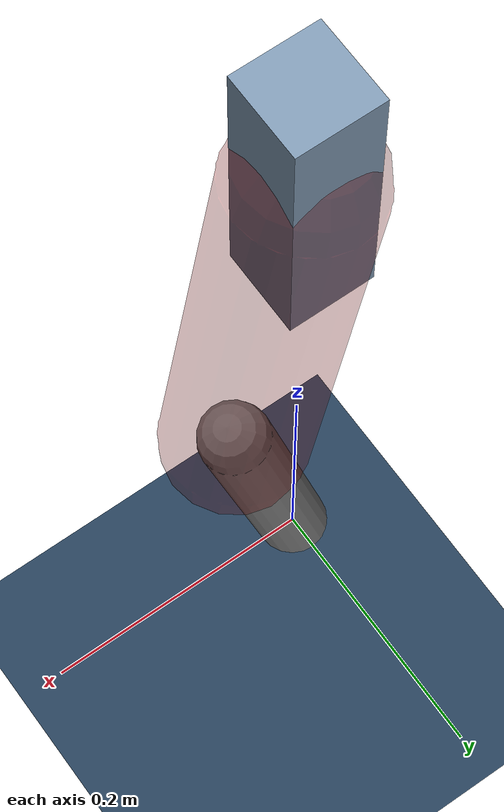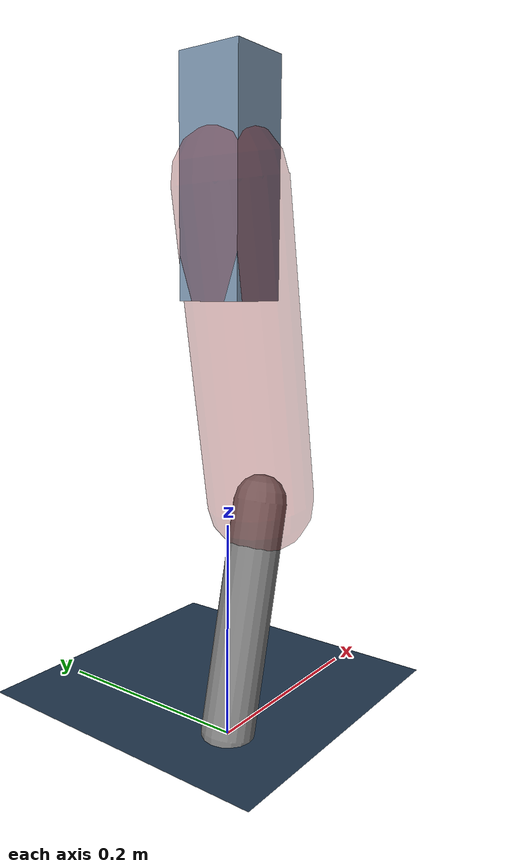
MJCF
<mujoco model="Hopper2D">
	<compiler inertiafromgeom="true" angle="radian" />
	<option timestep="0.001" integrator="implicit" cone="elliptic" solver="Newton" tolerance="1e-10" />

	<default>
		<geom contype="1" conaffinity="1" condim="3" friction="2 0.005 0.0001" solref="0.005 1" />
		<joint limited="true" damping="0.1" />
	</default>

	<asset>
		<texture name="skybox" type="skybox" builtin="gradient" rgb1=".4 .6 .8" rgb2="0 0 0" width="800" height="800" />
		<texture name="grid" type="2d" builtin="checker" rgb1=".1 .2 .3" rgb2=".2 .3 .4" width="300" height="300" mark="edge" markrgb=".2 .3 .4" />
		<material name="ground" texture="grid" texrepeat="1 1" texuniform="true" reflectance="0.1" />
		<material name="leg" rgba="0.5 0.6 0.7 1" />
	</asset>

	<worldbody>

		<geom name="floor" type="plane" size="5 5 0.25" material="ground" />

		<light directional="false" diffuse="0.8 0.8 0.8" specular="0.3 0.3 0.3" pos="0 0 2" dir="0 0 -1" />
		<light mode="targetbodycom" target="base" directional="false" diffuse="0.8 0.8 0.8" specular="0.3 0.3 0.3" pos="0 0 2" dir="0 0 -1" />

		<camera name="fixed" pos="0 -2 1" xyaxes="1 0 0 0 0 1" />
		<camera name="tracking" mode="trackcom" pos="0 -3 1" />

		<body name="root" pos="0 0 0.49819692128849113">
			<joint name="slide_x" type="slide" axis="1 0 0" range="-100 100" />
			<joint name="slide_z" type="slide" axis="0 0 1" range="0 10" />

			<body name="base" pos="0 0 0">
				<geom name="torso" type="box" size="0.03 0.03 0.1" mass="2.398" material="leg" />

				<body name="link1" pos="0 0 0" euler="0 1.3982260277409833 0">
					<joint type="hinge" axis="0 -1 0" pos="0 0 0" name="hinge1" limited="true" range="-3.14 3.14" stiffness="0" damping="0.1" />
					<geom name="thigh" type="capsule" fromto="0 0 0 0.2891955112786804 0 0" size="0.05" rgba="0.5 0 0 0.3" mass="0.9596278804524371" />

					<body name="link2" pos="0.2891955112786804 0 0" euler="0 0.4013127981040431 0">
						<joint type="hinge" axis="0 -1 0" pos="0 0 0" name="hinge2" limited="true" range="-3.14 3.14" stiffness="0" damping="0.1" />
						<geom name="shank" type="capsule" fromto="0 0 0 0.21900141000981083 0 0" size="0.025" mass="0.41680126900882974" />

					</body>
				</body>
			</body>
		</body>
	</worldbody>

	<actuator>
		<motor name="torque1" joint="hinge1" ctrlrange="-74.74994126515017 74.74994126515017" ctrllimited="true" gear="1" />
		<motor name="torque2" joint="hinge2" ctrlrange="-44.514737944096744 44.514737944096744" ctrllimited="true" gear="1" />
	</actuator>
</mujoco>
